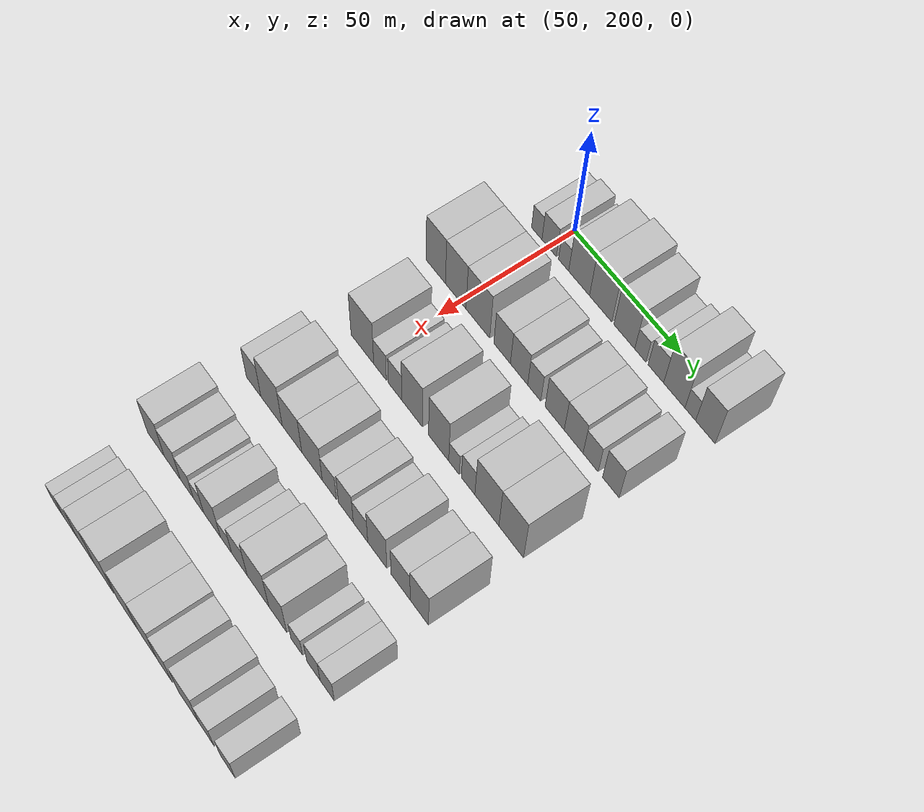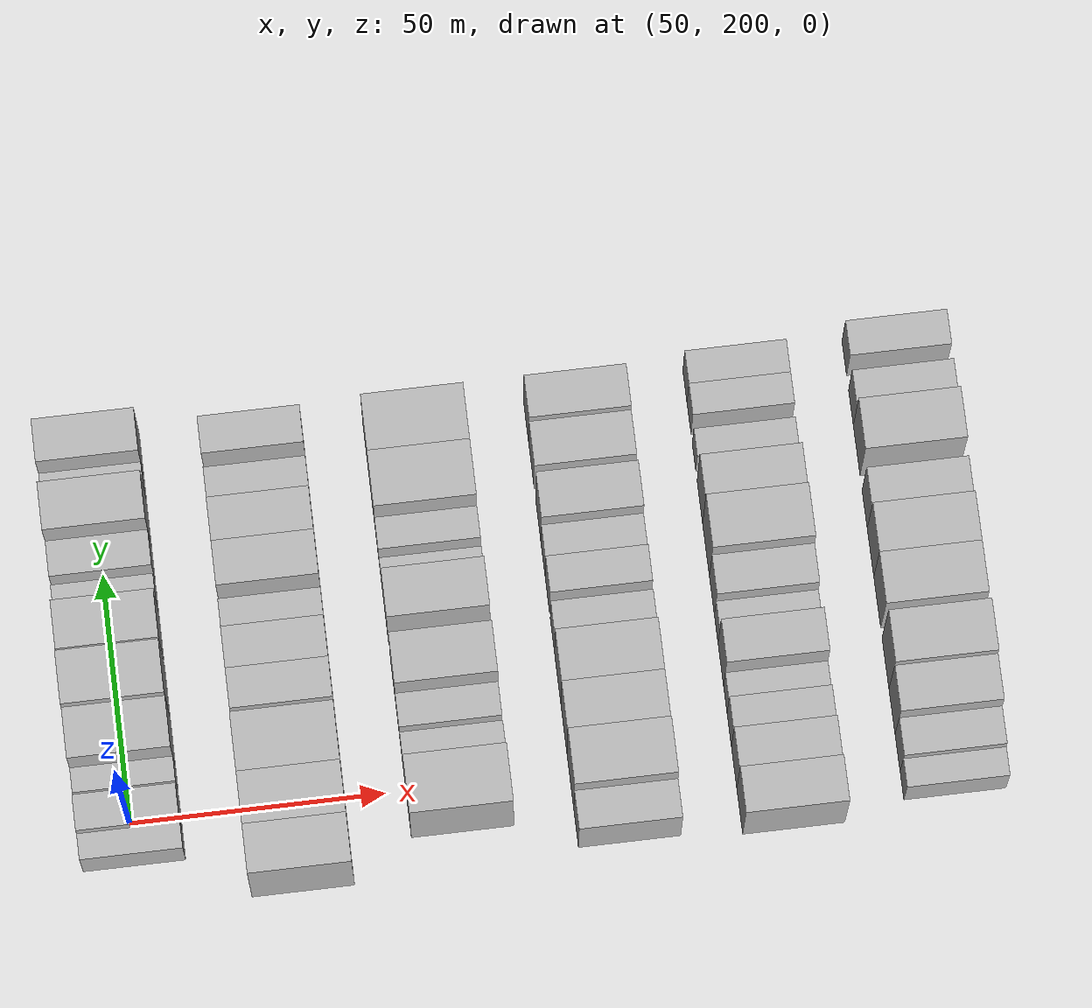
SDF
<sdf version="1.6">
 <world name="default">
  <model name="building_90">
   <static>1</static>
   <pose>50.0000 194.1657 0 0.000000 0.000000 0.000000</pose>
   <link name="link">
    <pose>0 0 6.00 0 0 0</pose>
    <collision name="collision"><geometry><box><size>20.0000 5.1552 12.0000</size></box></geometry></collision>
    <visual name="visual">
     <cast_shadows>0</cast_shadows>
     <geometry><box><size>20.0000 5.1552 12.0000</size></box></geometry>
     <material>
      <script>
       <uri>model://HANNAS_wall/materials/scripts</uri>
       <uri>model://HANNAS_wall/materials/textures</uri>
       <name>vrc/HANNAS_wall</name>
      </script>
     </material>
    </visual>
   </link>
  </model>
  <model name="building_91">
   <static>1</static>
   <pose>50.0000 200.2985 0 0.000000 0.000000 0.000000</pose>
   <link name="link">
    <pose>0 0 7.50 0 0 0</pose>
    <collision name="collision"><geometry><box><size>20.0000 7.1105 15.0000</size></box></geometry></collision>
    <visual name="visual">
     <cast_shadows>0</cast_shadows>
     <geometry><box><size>20.0000 7.1105 15.0000</size></box></geometry>
     <material>
      <script>
       <uri>model://HANNAS_wall/materials/scripts</uri>
       <uri>model://HANNAS_wall/materials/textures</uri>
       <name>vrc/HANNAS_wall</name>
      </script>
     </material>
    </visual>
   </link>
  </model>
  <model name="building_92">
   <static>1</static>
   <pose>50.0000 207.3197 0 0.000000 0.000000 0.000000</pose>
   <link name="link">
    <pose>0 0 6.00 0 0 0</pose>
    <collision name="collision"><geometry><box><size>20.0000 4.9317 12.0000</size></box></geometry></collision>
    <visual name="visual">
     <cast_shadows>0</cast_shadows>
     <geometry><box><size>20.0000 4.9317 12.0000</size></box></geometry>
     <material>
      <script>
       <uri>model://HANNAS_wall/materials/scripts</uri>
       <uri>model://HANNAS_wall/materials/textures</uri>
       <name>vrc/HANNAS_wall</name>
      </script>
     </material>
    </visual>
   </link>
  </model>
  <model name="building_93">
   <static>1</static>
   <pose>50.0000 214.8084 0 0.000000 0.000000 0.000000</pose>
   <link name="link">
    <pose>0 0 10.50 0 0 0</pose>
    <collision name="collision"><geometry><box><size>20.0000 10.0457 21.0000</size></box></geometry></collision>
    <visual name="visual">
     <cast_shadows>0</cast_shadows>
     <geometry><box><size>20.0000 10.0457 21.0000</size></box></geometry>
     <material>
      <script>
       <uri>model://HANNAS_wall/materials/scripts</uri>
       <uri>model://HANNAS_wall/materials/textures</uri>
       <name>vrc/HANNAS_wall</name>
      </script>
     </material>
    </visual>
   </link>
  </model>
  <model name="building_94">
   <static>1</static>
   <pose>50.0000 225.1279 0 0.000000 0.000000 0.000000</pose>
   <link name="link">
    <pose>0 0 12.00 0 0 0</pose>
    <collision name="collision"><geometry><box><size>20.0000 10.5933 24.0000</size></box></geometry></collision>
    <visual name="visual">
     <cast_shadows>0</cast_shadows>
     <geometry><box><size>20.0000 10.5933 24.0000</size></box></geometry>
     <material>
      <script>
       <uri>model://HANNAS_wall/materials/scripts</uri>
       <uri>model://HANNAS_wall/materials/textures</uri>
       <name>vrc/HANNAS_wall</name>
      </script>
     </material>
    </visual>
   </link>
  </model>
  <model name="building_95">
   <static>1</static>
   <pose>50.0000 236.2886 0 0.000000 0.000000 0.000000</pose>
   <link name="link">
    <pose>0 0 10.50 0 0 0</pose>
    <collision name="collision"><geometry><box><size>20.0000 9.7283 21.0000</size></box></geometry></collision>
    <visual name="visual">
     <cast_shadows>0</cast_shadows>
     <geometry><box><size>20.0000 9.7283 21.0000</size></box></geometry>
     <material>
      <script>
       <uri>model://HANNAS_wall/materials/scripts</uri>
       <uri>model://HANNAS_wall/materials/textures</uri>
       <name>vrc/HANNAS_wall</name>
      </script>
     </material>
    </visual>
   </link>
  </model>
  <model name="building_96">
   <static>1</static>
   <pose>50.0000 243.7318 0 0.000000 0.000000 0.000000</pose>
   <link name="link">
    <pose>0 0 6.00 0 0 0</pose>
    <collision name="collision"><geometry><box><size>20.0000 5.1581 12.0000</size></box></geometry></collision>
    <visual name="visual">
     <cast_shadows>0</cast_shadows>
     <geometry><box><size>20.0000 5.1581 12.0000</size></box></geometry>
     <material>
      <script>
       <uri>model://HANNAS_wall/materials/scripts</uri>
       <uri>model://HANNAS_wall/materials/textures</uri>
       <name>vrc/HANNAS_wall</name>
      </script>
     </material>
    </visual>
   </link>
  </model>
  <model name="building_97">
   <static>1</static>
   <pose>50.0000 250.8644 0 0.000000 0.000000 0.000000</pose>
   <link name="link">
    <pose>0 0 7.50 0 0 0</pose>
    <collision name="collision"><geometry><box><size>20.0000 7.1069 15.0000</size></box></geometry></collision>
    <visual name="visual">
     <cast_shadows>0</cast_shadows>
     <geometry><box><size>20.0000 7.1069 15.0000</size></box></geometry>
     <material>
      <script>
       <uri>model://HANNAS_wall/materials/scripts</uri>
       <uri>model://HANNAS_wall/materials/textures</uri>
       <name>vrc/HANNAS_wall</name>
      </script>
     </material>
    </visual>
   </link>
  </model>
  <model name="building_98">
   <static>1</static>
   <pose>50.0000 259.2221 0 0.000000 0.000000 0.000000</pose>
   <link name="link">
    <pose>0 0 12.00 0 0 0</pose>
    <collision name="collision"><geometry><box><size>20.0000 9.6086 24.0000</size></box></geometry></collision>
    <visual name="visual">
     <cast_shadows>0</cast_shadows>
     <geometry><box><size>20.0000 9.6086 24.0000</size></box></geometry>
     <material>
      <script>
       <uri>model://HANNAS_wall/materials/scripts</uri>
       <uri>model://HANNAS_wall/materials/textures</uri>
       <name>vrc/HANNAS_wall</name>
      </script>
     </material>
    </visual>
   </link>
  </model>
  <model name="building_99">
   <static>1</static>
   <pose>50.0000 266.4333 0 0.000000 0.000000 0.000000</pose>
   <link name="link">
    <pose>0 0 6.00 0 0 0</pose>
    <collision name="collision"><geometry><box><size>20.0000 4.8139 12.0000</size></box></geometry></collision>
    <visual name="visual">
     <cast_shadows>0</cast_shadows>
     <geometry><box><size>20.0000 4.8139 12.0000</size></box></geometry>
     <material>
      <script>
       <uri>model://HANNAS_wall/materials/scripts</uri>
       <uri>model://HANNAS_wall/materials/textures</uri>
       <name>vrc/HANNAS_wall</name>
      </script>
     </material>
    </visual>
   </link>
  </model>
  <model name="building_100">
   <static>1</static>
   <pose>50.0000 273.1542 0 0.000000 0.000000 0.000000</pose>
   <link name="link">
    <pose>0 0 10.50 0 0 0</pose>
    <collision name="collision"><geometry><box><size>20.0000 8.6278 21.0000</size></box></geometry></collision>
    <visual name="visual">
     <cast_shadows>0</cast_shadows>
     <geometry><box><size>20.0000 8.6278 21.0000</size></box></geometry>
     <material>
      <script>
       <uri>model://HANNAS_wall/materials/scripts</uri>
       <uri>model://HANNAS_wall/materials/textures</uri>
       <name>vrc/HANNAS_wall</name>
      </script>
     </material>
    </visual>
   </link>
  </model>
  <model name="building_216">
   <static>1</static>
   <pose>82.0000 187.6401 0 0.000000 0.000000 0.000000</pose>
   <link name="link">
    <pose>0 0 12.00 0 0 0</pose>
    <collision name="collision"><geometry><box><size>20.0000 9.7292 24.0000</size></box></geometry></collision>
    <visual name="visual">
     <cast_shadows>0</cast_shadows>
     <geometry><box><size>20.0000 9.7292 24.0000</size></box></geometry>
     <material>
      <script>
       <uri>model://HANNAS_wall/materials/scripts</uri>
       <uri>model://HANNAS_wall/materials/textures</uri>
       <name>vrc/HANNAS_wall</name>
      </script>
     </material>
    </visual>
   </link>
  </model>
  <model name="building_217">
   <static>1</static>
   <pose>82.0000 197.6625 0 0.000000 0.000000 0.000000</pose>
   <link name="link">
    <pose>0 0 12.00 0 0 0</pose>
    <collision name="collision"><geometry><box><size>20.0000 10.3156 24.0000</size></box></geometry></collision>
    <visual name="visual">
     <cast_shadows>0</cast_shadows>
     <geometry><box><size>20.0000 10.3156 24.0000</size></box></geometry>
     <material>
      <script>
       <uri>model://HANNAS_wall/materials/scripts</uri>
       <uri>model://HANNAS_wall/materials/textures</uri>
       <name>vrc/HANNAS_wall</name>
      </script>
     </material>
    </visual>
   </link>
  </model>
  <model name="building_218">
   <static>1</static>
   <pose>82.0000 208.6735 0 0.000000 0.000000 0.000000</pose>
   <link name="link">
    <pose>0 0 12.00 0 0 0</pose>
    <collision name="collision"><geometry><box><size>20.0000 11.7064 24.0000</size></box></geometry></collision>
    <visual name="visual">
     <cast_shadows>0</cast_shadows>
     <geometry><box><size>20.0000 11.7064 24.0000</size></box></geometry>
     <material>
      <script>
       <uri>model://HANNAS_wall/materials/scripts</uri>
       <uri>model://HANNAS_wall/materials/textures</uri>
       <name>vrc/HANNAS_wall</name>
      </script>
     </material>
    </visual>
   </link>
  </model>
  <model name="building_219">
   <static>1</static>
   <pose>82.0000 220.5363 0 0.000000 0.000000 0.000000</pose>
   <link name="link">
    <pose>0 0 9.00 0 0 0</pose>
    <collision name="collision"><geometry><box><size>20.0000 8.0192 18.0000</size></box></geometry></collision>
    <visual name="visual">
     <cast_shadows>0</cast_shadows>
     <geometry><box><size>20.0000 8.0192 18.0000</size></box></geometry>
     <material>
      <script>
       <uri>model://HANNAS_wall/materials/scripts</uri>
       <uri>model://HANNAS_wall/materials/textures</uri>
       <name>vrc/HANNAS_wall</name>
      </script>
     </material>
    </visual>
   </link>
  </model>
  <model name="building_220">
   <static>1</static>
   <pose>82.0000 228.6786 0 0.000000 0.000000 0.000000</pose>
   <link name="link">
    <pose>0 0 9.00 0 0 0</pose>
    <collision name="collision"><geometry><box><size>20.0000 8.2654 18.0000</size></box></geometry></collision>
    <visual name="visual">
     <cast_shadows>0</cast_shadows>
     <geometry><box><size>20.0000 8.2654 18.0000</size></box></geometry>
     <material>
      <script>
       <uri>model://HANNAS_wall/materials/scripts</uri>
       <uri>model://HANNAS_wall/materials/textures</uri>
       <name>vrc/HANNAS_wall</name>
      </script>
     </material>
    </visual>
   </link>
  </model>
  <model name="building_221">
   <static>1</static>
   <pose>82.0000 235.9251 0 0.000000 0.000000 0.000000</pose>
   <link name="link">
    <pose>0 0 7.50 0 0 0</pose>
    <collision name="collision"><geometry><box><size>20.0000 6.2278 15.0000</size></box></geometry></collision>
    <visual name="visual">
     <cast_shadows>0</cast_shadows>
     <geometry><box><size>20.0000 6.2278 15.0000</size></box></geometry>
     <material>
      <script>
       <uri>model://HANNAS_wall/materials/scripts</uri>
       <uri>model://HANNAS_wall/materials/textures</uri>
       <name>vrc/HANNAS_wall</name>
      </script>
     </material>
    </visual>
   </link>
  </model>
  <model name="building_222">
   <static>1</static>
   <pose>82.0000 245.5191 0 0.000000 0.000000 0.000000</pose>
   <link name="link">
    <pose>0 0 9.00 0 0 0</pose>
    <collision name="collision"><geometry><box><size>20.0000 8.9601 18.0000</size></box></geometry></collision>
    <visual name="visual">
     <cast_shadows>0</cast_shadows>
     <geometry><box><size>20.0000 8.9601 18.0000</size></box></geometry>
     <material>
      <script>
       <uri>model://HANNAS_wall/materials/scripts</uri>
       <uri>model://HANNAS_wall/materials/textures</uri>
       <name>vrc/HANNAS_wall</name>
      </script>
     </material>
    </visual>
   </link>
  </model>
  <model name="building_223">
   <static>1</static>
   <pose>82.0000 254.3546 0 0.000000 0.000000 0.000000</pose>
   <link name="link">
    <pose>0 0 9.00 0 0 0</pose>
    <collision name="collision"><geometry><box><size>20.0000 8.7109 18.0000</size></box></geometry></collision>
    <visual name="visual">
     <cast_shadows>0</cast_shadows>
     <geometry><box><size>20.0000 8.7109 18.0000</size></box></geometry>
     <material>
      <script>
       <uri>model://HANNAS_wall/materials/scripts</uri>
       <uri>model://HANNAS_wall/materials/textures</uri>
       <name>vrc/HANNAS_wall</name>
      </script>
     </material>
    </visual>
   </link>
  </model>
  <model name="building_224">
   <static>1</static>
   <pose>82.0000 262.1255 0 0.000000 0.000000 0.000000</pose>
   <link name="link">
    <pose>0 0 7.50 0 0 0</pose>
    <collision name="collision"><geometry><box><size>20.0000 6.8310 15.0000</size></box></geometry></collision>
    <visual name="visual">
     <cast_shadows>0</cast_shadows>
     <geometry><box><size>20.0000 6.8310 15.0000</size></box></geometry>
     <material>
      <script>
       <uri>model://HANNAS_wall/materials/scripts</uri>
       <uri>model://HANNAS_wall/materials/textures</uri>
       <name>vrc/HANNAS_wall</name>
      </script>
     </material>
    </visual>
   </link>
  </model>
  <model name="building_225">
   <static>1</static>
   <pose>82.0000 271.2962 0 0.000000 0.000000 0.000000</pose>
   <link name="link">
    <pose>0 0 9.00 0 0 0</pose>
    <collision name="collision"><geometry><box><size>20.0000 7.5104 18.0000</size></box></geometry></collision>
    <visual name="visual">
     <cast_shadows>0</cast_shadows>
     <geometry><box><size>20.0000 7.5104 18.0000</size></box></geometry>
     <material>
      <script>
       <uri>model://HANNAS_wall/materials/scripts</uri>
       <uri>model://HANNAS_wall/materials/textures</uri>
       <name>vrc/HANNAS_wall</name>
      </script>
     </material>
    </visual>
   </link>
  </model>
  <model name="building_343">
   <static>1</static>
   <pose>114.0000 196.5403 0 0.000000 0.000000 0.000000</pose>
   <link name="link">
    <pose>0 0 12.00 0 0 0</pose>
    <collision name="collision"><geometry><box><size>20.0000 11.5125 24.0000</size></box></geometry></collision>
    <visual name="visual">
     <cast_shadows>0</cast_shadows>
     <geometry><box><size>20.0000 11.5125 24.0000</size></box></geometry>
     <material>
      <script>
       <uri>model://HANNAS_wall/materials/scripts</uri>
       <uri>model://HANNAS_wall/materials/textures</uri>
       <name>vrc/HANNAS_wall</name>
      </script>
     </material>
    </visual>
   </link>
  </model>
  <model name="building_344">
   <static>1</static>
   <pose>114.0000 205.4715 0 0.000000 0.000000 0.000000</pose>
   <link name="link">
    <pose>0 0 7.50 0 0 0</pose>
    <collision name="collision"><geometry><box><size>20.0000 6.3498 15.0000</size></box></geometry></collision>
    <visual name="visual">
     <cast_shadows>0</cast_shadows>
     <geometry><box><size>20.0000 6.3498 15.0000</size></box></geometry>
     <material>
      <script>
       <uri>model://HANNAS_wall/materials/scripts</uri>
       <uri>model://HANNAS_wall/materials/textures</uri>
       <name>vrc/HANNAS_wall</name>
      </script>
     </material>
    </visual>
   </link>
  </model>
  <model name="building_345">
   <static>1</static>
   <pose>114.0000 212.9969 0 0.000000 0.000000 0.000000</pose>
   <link name="link">
    <pose>0 0 7.50 0 0 0</pose>
    <collision name="collision"><geometry><box><size>20.0000 6.7010 15.0000</size></box></geometry></collision>
    <visual name="visual">
     <cast_shadows>0</cast_shadows>
     <geometry><box><size>20.0000 6.7010 15.0000</size></box></geometry>
     <material>
      <script>
       <uri>model://HANNAS_wall/materials/scripts</uri>
       <uri>model://HANNAS_wall/materials/textures</uri>
       <name>vrc/HANNAS_wall</name>
      </script>
     </material>
    </visual>
   </link>
  </model>
  <model name="building_346">
   <static>1</static>
   <pose>114.0000 221.4097 0 0.000000 0.000000 0.000000</pose>
   <link name="link">
    <pose>0 0 12.00 0 0 0</pose>
    <collision name="collision"><geometry><box><size>20.0000 10.1246 24.0000</size></box></geometry></collision>
    <visual name="visual">
     <cast_shadows>0</cast_shadows>
     <geometry><box><size>20.0000 10.1246 24.0000</size></box></geometry>
     <material>
      <script>
       <uri>model://HANNAS_wall/materials/scripts</uri>
       <uri>model://HANNAS_wall/materials/textures</uri>
       <name>vrc/HANNAS_wall</name>
      </script>
     </material>
    </visual>
   </link>
  </model>
  <model name="building_347">
   <static>1</static>
   <pose>114.0000 234.3363 0 0.000000 0.000000 0.000000</pose>
   <link name="link">
    <pose>0 0 12.00 0 0 0</pose>
    <collision name="collision"><geometry><box><size>20.0000 9.7286 24.0000</size></box></geometry></collision>
    <visual name="visual">
     <cast_shadows>0</cast_shadows>
     <geometry><box><size>20.0000 9.7286 24.0000</size></box></geometry>
     <material>
      <script>
       <uri>model://HANNAS_wall/materials/scripts</uri>
       <uri>model://HANNAS_wall/materials/textures</uri>
       <name>vrc/HANNAS_wall</name>
      </script>
     </material>
    </visual>
   </link>
  </model>
  <model name="building_348">
   <static>1</static>
   <pose>114.0000 241.6982 0 0.000000 0.000000 0.000000</pose>
   <link name="link">
    <pose>0 0 6.00 0 0 0</pose>
    <collision name="collision"><geometry><box><size>20.0000 4.9952 12.0000</size></box></geometry></collision>
    <visual name="visual">
     <cast_shadows>0</cast_shadows>
     <geometry><box><size>20.0000 4.9952 12.0000</size></box></geometry>
     <material>
      <script>
       <uri>model://HANNAS_wall/materials/scripts</uri>
       <uri>model://HANNAS_wall/materials/textures</uri>
       <name>vrc/HANNAS_wall</name>
      </script>
     </material>
    </visual>
   </link>
  </model>
  <model name="building_349">
   <static>1</static>
   <pose>114.0000 248.3928 0 0.000000 0.000000 0.000000</pose>
   <link name="link">
    <pose>0 0 7.50 0 0 0</pose>
    <collision name="collision"><geometry><box><size>20.0000 6.3942 15.0000</size></box></geometry></collision>
    <visual name="visual">
     <cast_shadows>0</cast_shadows>
     <geometry><box><size>20.0000 6.3942 15.0000</size></box></geometry>
     <material>
      <script>
       <uri>model://HANNAS_wall/materials/scripts</uri>
       <uri>model://HANNAS_wall/materials/textures</uri>
       <name>vrc/HANNAS_wall</name>
      </script>
     </material>
    </visual>
   </link>
  </model>
  <model name="building_350">
   <static>1</static>
   <pose>114.0000 257.1950 0 0.000000 0.000000 0.000000</pose>
   <link name="link">
    <pose>0 0 12.00 0 0 0</pose>
    <collision name="collision"><geometry><box><size>20.0000 11.2101 24.0000</size></box></geometry></collision>
    <visual name="visual">
     <cast_shadows>0</cast_shadows>
     <geometry><box><size>20.0000 11.2101 24.0000</size></box></geometry>
     <material>
      <script>
       <uri>model://HANNAS_wall/materials/scripts</uri>
       <uri>model://HANNAS_wall/materials/textures</uri>
       <name>vrc/HANNAS_wall</name>
      </script>
     </material>
    </visual>
   </link>
  </model>
  <model name="building_351">
   <static>1</static>
   <pose>114.0000 268.4526 0 0.000000 0.000000 0.000000</pose>
   <link name="link">
    <pose>0 0 12.00 0 0 0</pose>
    <collision name="collision"><geometry><box><size>20.0000 11.3052 24.0000</size></box></geometry></collision>
    <visual name="visual">
     <cast_shadows>0</cast_shadows>
     <geometry><box><size>20.0000 11.3052 24.0000</size></box></geometry>
     <material>
      <script>
       <uri>model://HANNAS_wall/materials/scripts</uri>
       <uri>model://HANNAS_wall/materials/textures</uri>
       <name>vrc/HANNAS_wall</name>
      </script>
     </material>
    </visual>
   </link>
  </model>
  <model name="building_454">
   <static>1</static>
   <pose>146.0000 188.8323 0 0.000000 0.000000 0.000000</pose>
   <link name="link">
    <pose>0 0 9.00 0 0 0</pose>
    <collision name="collision"><geometry><box><size>20.0000 7.6189 18.0000</size></box></geometry></collision>
    <visual name="visual">
     <cast_shadows>0</cast_shadows>
     <geometry><box><size>20.0000 7.6189 18.0000</size></box></geometry>
     <material>
      <script>
       <uri>model://HANNAS_wall/materials/scripts</uri>
       <uri>model://HANNAS_wall/materials/textures</uri>
       <name>vrc/HANNAS_wall</name>
      </script>
     </material>
    </visual>
   </link>
  </model>
  <model name="building_455">
   <static>1</static>
   <pose>146.0000 198.1766 0 0.000000 0.000000 0.000000</pose>
   <link name="link">
    <pose>0 0 12.00 0 0 0</pose>
    <collision name="collision"><geometry><box><size>20.0000 11.0697 24.0000</size></box></geometry></collision>
    <visual name="visual">
     <cast_shadows>0</cast_shadows>
     <geometry><box><size>20.0000 11.0697 24.0000</size></box></geometry>
     <material>
      <script>
       <uri>model://HANNAS_wall/materials/scripts</uri>
       <uri>model://HANNAS_wall/materials/textures</uri>
       <name>vrc/HANNAS_wall</name>
      </script>
     </material>
    </visual>
   </link>
  </model>
  <model name="building_456">
   <static>1</static>
   <pose>146.0000 208.7052 0 0.000000 0.000000 0.000000</pose>
   <link name="link">
    <pose>0 0 10.50 0 0 0</pose>
    <collision name="collision"><geometry><box><size>20.0000 9.9875 21.0000</size></box></geometry></collision>
    <visual name="visual">
     <cast_shadows>0</cast_shadows>
     <geometry><box><size>20.0000 9.9875 21.0000</size></box></geometry>
     <material>
      <script>
       <uri>model://HANNAS_wall/materials/scripts</uri>
       <uri>model://HANNAS_wall/materials/textures</uri>
       <name>vrc/HANNAS_wall</name>
      </script>
     </material>
    </visual>
   </link>
  </model>
  <model name="building_457">
   <static>1</static>
   <pose>146.0000 218.8405 0 0.000000 0.000000 0.000000</pose>
   <link name="link">
    <pose>0 0 10.50 0 0 0</pose>
    <collision name="collision"><geometry><box><size>20.0000 10.2830 21.0000</size></box></geometry></collision>
    <visual name="visual">
     <cast_shadows>0</cast_shadows>
     <geometry><box><size>20.0000 10.2830 21.0000</size></box></geometry>
     <material>
      <script>
       <uri>model://HANNAS_wall/materials/scripts</uri>
       <uri>model://HANNAS_wall/materials/textures</uri>
       <name>vrc/HANNAS_wall</name>
      </script>
     </material>
    </visual>
   </link>
  </model>
  <model name="building_458">
   <static>1</static>
   <pose>146.0000 227.4841 0 0.000000 0.000000 0.000000</pose>
   <link name="link">
    <pose>0 0 7.50 0 0 0</pose>
    <collision name="collision"><geometry><box><size>20.0000 7.0042 15.0000</size></box></geometry></collision>
    <visual name="visual">
     <cast_shadows>0</cast_shadows>
     <geometry><box><size>20.0000 7.0042 15.0000</size></box></geometry>
     <material>
      <script>
       <uri>model://HANNAS_wall/materials/scripts</uri>
       <uri>model://HANNAS_wall/materials/textures</uri>
       <name>vrc/HANNAS_wall</name>
      </script>
     </material>
    </visual>
   </link>
  </model>
  <model name="building_459">
   <static>1</static>
   <pose>146.0000 235.6304 0 0.000000 0.000000 0.000000</pose>
   <link name="link">
    <pose>0 0 9.00 0 0 0</pose>
    <collision name="collision"><geometry><box><size>20.0000 7.2883 18.0000</size></box></geometry></collision>
    <visual name="visual">
     <cast_shadows>0</cast_shadows>
     <geometry><box><size>20.0000 7.2883 18.0000</size></box></geometry>
     <material>
      <script>
       <uri>model://HANNAS_wall/materials/scripts</uri>
       <uri>model://HANNAS_wall/materials/textures</uri>
       <name>vrc/HANNAS_wall</name>
      </script>
     </material>
    </visual>
   </link>
  </model>
  <model name="building_460">
   <static>1</static>
   <pose>146.0000 242.7772 0 0.000000 0.000000 0.000000</pose>
   <link name="link">
    <pose>0 0 7.50 0 0 0</pose>
    <collision name="collision"><geometry><box><size>20.0000 7.0054 15.0000</size></box></geometry></collision>
    <visual name="visual">
     <cast_shadows>0</cast_shadows>
     <geometry><box><size>20.0000 7.0054 15.0000</size></box></geometry>
     <material>
      <script>
       <uri>model://HANNAS_wall/materials/scripts</uri>
       <uri>model://HANNAS_wall/materials/textures</uri>
       <name>vrc/HANNAS_wall</name>
      </script>
     </material>
    </visual>
   </link>
  </model>
  <model name="building_461">
   <static>1</static>
   <pose>146.0000 250.8493 0 0.000000 0.000000 0.000000</pose>
   <link name="link">
    <pose>0 0 10.50 0 0 0</pose>
    <collision name="collision"><geometry><box><size>20.0000 9.1389 21.0000</size></box></geometry></collision>
    <visual name="visual">
     <cast_shadows>0</cast_shadows>
     <geometry><box><size>20.0000 9.1389 21.0000</size></box></geometry>
     <material>
      <script>
       <uri>model://HANNAS_wall/materials/scripts</uri>
       <uri>model://HANNAS_wall/materials/textures</uri>
       <name>vrc/HANNAS_wall</name>
      </script>
     </material>
    </visual>
   </link>
  </model>
  <model name="building_462">
   <static>1</static>
   <pose>146.0000 261.9082 0 0.000000 0.000000 0.000000</pose>
   <link name="link">
    <pose>0 0 9.00 0 0 0</pose>
    <collision name="collision"><geometry><box><size>20.0000 8.9789 18.0000</size></box></geometry></collision>
    <visual name="visual">
     <cast_shadows>0</cast_shadows>
     <geometry><box><size>20.0000 8.9789 18.0000</size></box></geometry>
     <material>
      <script>
       <uri>model://HANNAS_wall/materials/scripts</uri>
       <uri>model://HANNAS_wall/materials/textures</uri>
       <name>vrc/HANNAS_wall</name>
      </script>
     </material>
    </visual>
   </link>
  </model>
  <model name="building_463">
   <static>1</static>
   <pose>146.0000 270.6657 0 0.000000 0.000000 0.000000</pose>
   <link name="link">
    <pose>0 0 10.50 0 0 0</pose>
    <collision name="collision"><geometry><box><size>20.0000 8.5362 21.0000</size></box></geometry></collision>
    <visual name="visual">
     <cast_shadows>0</cast_shadows>
     <geometry><box><size>20.0000 8.5362 21.0000</size></box></geometry>
     <material>
      <script>
       <uri>model://HANNAS_wall/materials/scripts</uri>
       <uri>model://HANNAS_wall/materials/textures</uri>
       <name>vrc/HANNAS_wall</name>
      </script>
     </material>
    </visual>
   </link>
  </model>
  <model name="building_580">
   <static>1</static>
   <pose>178.0000 188.4040 0 0.000000 0.000000 0.000000</pose>
   <link name="link">
    <pose>0 0 10.50 0 0 0</pose>
    <collision name="collision"><geometry><box><size>20.0000 9.0870 21.0000</size></box></geometry></collision>
    <visual name="visual">
     <cast_shadows>0</cast_shadows>
     <geometry><box><size>20.0000 9.0870 21.0000</size></box></geometry>
     <material>
      <script>
       <uri>model://HANNAS_wall/materials/scripts</uri>
       <uri>model://HANNAS_wall/materials/textures</uri>
       <name>vrc/HANNAS_wall</name>
      </script>
     </material>
    </visual>
   </link>
  </model>
  <model name="building_581">
   <static>1</static>
   <pose>178.0000 197.1548 0 0.000000 0.000000 0.000000</pose>
   <link name="link">
    <pose>0 0 9.00 0 0 0</pose>
    <collision name="collision"><geometry><box><size>20.0000 8.4147 18.0000</size></box></geometry></collision>
    <visual name="visual">
     <cast_shadows>0</cast_shadows>
     <geometry><box><size>20.0000 8.4147 18.0000</size></box></geometry>
     <material>
      <script>
       <uri>model://HANNAS_wall/materials/scripts</uri>
       <uri>model://HANNAS_wall/materials/textures</uri>
       <name>vrc/HANNAS_wall</name>
      </script>
     </material>
    </visual>
   </link>
  </model>
  <model name="building_582">
   <static>1</static>
   <pose>178.0000 204.7232 0 0.000000 0.000000 0.000000</pose>
   <link name="link">
    <pose>0 0 7.50 0 0 0</pose>
    <collision name="collision"><geometry><box><size>20.0000 6.7220 15.0000</size></box></geometry></collision>
    <visual name="visual">
     <cast_shadows>0</cast_shadows>
     <geometry><box><size>20.0000 6.7220 15.0000</size></box></geometry>
     <material>
      <script>
       <uri>model://HANNAS_wall/materials/scripts</uri>
       <uri>model://HANNAS_wall/materials/textures</uri>
       <name>vrc/HANNAS_wall</name>
      </script>
     </material>
    </visual>
   </link>
  </model>
  <model name="building_583">
   <static>1</static>
   <pose>178.0000 210.8169 0 0.000000 0.000000 0.000000</pose>
   <link name="link">
    <pose>0 0 6.00 0 0 0</pose>
    <collision name="collision"><geometry><box><size>20.0000 5.4655 12.0000</size></box></geometry></collision>
    <visual name="visual">
     <cast_shadows>0</cast_shadows>
     <geometry><box><size>20.0000 5.4655 12.0000</size></box></geometry>
     <material>
      <script>
       <uri>model://HANNAS_wall/materials/scripts</uri>
       <uri>model://HANNAS_wall/materials/textures</uri>
       <name>vrc/HANNAS_wall</name>
      </script>
     </material>
    </visual>
   </link>
  </model>
  <model name="building_584">
   <static>1</static>
   <pose>178.0000 217.8485 0 0.000000 0.000000 0.000000</pose>
   <link name="link">
    <pose>0 0 10.50 0 0 0</pose>
    <collision name="collision"><geometry><box><size>20.0000 8.5977 21.0000</size></box></geometry></collision>
    <visual name="visual">
     <cast_shadows>0</cast_shadows>
     <geometry><box><size>20.0000 8.5977 21.0000</size></box></geometry>
     <material>
      <script>
       <uri>model://HANNAS_wall/materials/scripts</uri>
       <uri>model://HANNAS_wall/materials/textures</uri>
       <name>vrc/HANNAS_wall</name>
      </script>
     </material>
    </visual>
   </link>
  </model>
  <model name="building_585">
   <static>1</static>
   <pose>178.0000 224.9964 0 0.000000 0.000000 0.000000</pose>
   <link name="link">
    <pose>0 0 6.00 0 0 0</pose>
    <collision name="collision"><geometry><box><size>20.0000 5.6981 12.0000</size></box></geometry></collision>
    <visual name="visual">
     <cast_shadows>0</cast_shadows>
     <geometry><box><size>20.0000 5.6981 12.0000</size></box></geometry>
     <material>
      <script>
       <uri>model://HANNAS_wall/materials/scripts</uri>
       <uri>model://HANNAS_wall/materials/textures</uri>
       <name>vrc/HANNAS_wall</name>
      </script>
     </material>
    </visual>
   </link>
  </model>
  <model name="building_586">
   <static>1</static>
   <pose>178.0000 231.7770 0 0.000000 0.000000 0.000000</pose>
   <link name="link">
    <pose>0 0 9.00 0 0 0</pose>
    <collision name="collision"><geometry><box><size>20.0000 7.8631 18.0000</size></box></geometry></collision>
    <visual name="visual">
     <cast_shadows>0</cast_shadows>
     <geometry><box><size>20.0000 7.8631 18.0000</size></box></geometry>
     <material>
      <script>
       <uri>model://HANNAS_wall/materials/scripts</uri>
       <uri>model://HANNAS_wall/materials/textures</uri>
       <name>vrc/HANNAS_wall</name>
      </script>
     </material>
    </visual>
   </link>
  </model>
  <model name="building_587">
   <static>1</static>
   <pose>178.0000 241.0369 0 0.000000 0.000000 0.000000</pose>
   <link name="link">
    <pose>0 0 12.00 0 0 0</pose>
    <collision name="collision"><geometry><box><size>20.0000 10.6567 24.0000</size></box></geometry></collision>
    <visual name="visual">
     <cast_shadows>0</cast_shadows>
     <geometry><box><size>20.0000 10.6567 24.0000</size></box></geometry>
     <material>
      <script>
       <uri>model://HANNAS_wall/materials/scripts</uri>
       <uri>model://HANNAS_wall/materials/textures</uri>
       <name>vrc/HANNAS_wall</name>
      </script>
     </material>
    </visual>
   </link>
  </model>
  <model name="building_588">
   <static>1</static>
   <pose>178.0000 250.7527 0 0.000000 0.000000 0.000000</pose>
   <link name="link">
    <pose>0 0 10.50 0 0 0</pose>
    <collision name="collision"><geometry><box><size>20.0000 8.7750 21.0000</size></box></geometry></collision>
    <visual name="visual">
     <cast_shadows>0</cast_shadows>
     <geometry><box><size>20.0000 8.7750 21.0000</size></box></geometry>
     <material>
      <script>
       <uri>model://HANNAS_wall/materials/scripts</uri>
       <uri>model://HANNAS_wall/materials/textures</uri>
       <name>vrc/HANNAS_wall</name>
      </script>
     </material>
    </visual>
   </link>
  </model>
  <model name="building_589">
   <static>1</static>
   <pose>178.0000 259.9557 0 0.000000 0.000000 0.000000</pose>
   <link name="link">
    <pose>0 0 6.00 0 0 0</pose>
    <collision name="collision"><geometry><box><size>20.0000 5.6312 12.0000</size></box></geometry></collision>
    <visual name="visual">
     <cast_shadows>0</cast_shadows>
     <geometry><box><size>20.0000 5.6312 12.0000</size></box></geometry>
     <material>
      <script>
       <uri>model://HANNAS_wall/materials/scripts</uri>
       <uri>model://HANNAS_wall/materials/textures</uri>
       <name>vrc/HANNAS_wall</name>
      </script>
     </material>
    </visual>
   </link>
  </model>
  <model name="building_590">
   <static>1</static>
   <pose>178.0000 267.9493 0 0.000000 0.000000 0.000000</pose>
   <link name="link">
    <pose>0 0 7.50 0 0 0</pose>
    <collision name="collision"><geometry><box><size>20.0000 6.3559 15.0000</size></box></geometry></collision>
    <visual name="visual">
     <cast_shadows>0</cast_shadows>
     <geometry><box><size>20.0000 6.3559 15.0000</size></box></geometry>
     <material>
      <script>
       <uri>model://HANNAS_wall/materials/scripts</uri>
       <uri>model://HANNAS_wall/materials/textures</uri>
       <name>vrc/HANNAS_wall</name>
      </script>
     </material>
    </visual>
   </link>
  </model>
  <model name="building_591">
   <static>1</static>
   <pose>178.0000 274.4522 0 0.000000 0.000000 0.000000</pose>
   <link name="link">
    <pose>0 0 7.50 0 0 0</pose>
    <collision name="collision"><geometry><box><size>20.0000 6.6498 15.0000</size></box></geometry></collision>
    <visual name="visual">
     <cast_shadows>0</cast_shadows>
     <geometry><box><size>20.0000 6.6498 15.0000</size></box></geometry>
     <material>
      <script>
       <uri>model://HANNAS_wall/materials/scripts</uri>
       <uri>model://HANNAS_wall/materials/textures</uri>
       <name>vrc/HANNAS_wall</name>
      </script>
     </material>
    </visual>
   </link>
  </model>
  <model name="building_704">
   <static>1</static>
   <pose>210.0000 189.7635 0 0.000000 0.000000 0.000000</pose>
   <link name="link">
    <pose>0 0 6.00 0 0 0</pose>
    <collision name="collision"><geometry><box><size>20.0000 5.6793 12.0000</size></box></geometry></collision>
    <visual name="visual">
     <cast_shadows>0</cast_shadows>
     <geometry><box><size>20.0000 5.6793 12.0000</size></box></geometry>
     <material>
      <script>
       <uri>model://HANNAS_wall/materials/scripts</uri>
       <uri>model://HANNAS_wall/materials/textures</uri>
       <name>vrc/HANNAS_wall</name>
      </script>
     </material>
    </visual>
   </link>
  </model>
  <model name="building_705">
   <static>1</static>
   <pose>210.0000 196.3363 0 0.000000 0.000000 0.000000</pose>
   <link name="link">
    <pose>0 0 7.50 0 0 0</pose>
    <collision name="collision"><geometry><box><size>20.0000 7.4663 15.0000</size></box></geometry></collision>
    <visual name="visual">
     <cast_shadows>0</cast_shadows>
     <geometry><box><size>20.0000 7.4663 15.0000</size></box></geometry>
     <material>
      <script>
       <uri>model://HANNAS_wall/materials/scripts</uri>
       <uri>model://HANNAS_wall/materials/textures</uri>
       <name>vrc/HANNAS_wall</name>
      </script>
     </material>
    </visual>
   </link>
  </model>
  <model name="building_706">
   <static>1</static>
   <pose>210.0000 204.6052 0 0.000000 0.000000 0.000000</pose>
   <link name="link">
    <pose>0 0 10.50 0 0 0</pose>
    <collision name="collision"><geometry><box><size>20.0000 9.0716 21.0000</size></box></geometry></collision>
    <visual name="visual">
     <cast_shadows>0</cast_shadows>
     <geometry><box><size>20.0000 9.0716 21.0000</size></box></geometry>
     <material>
      <script>
       <uri>model://HANNAS_wall/materials/scripts</uri>
       <uri>model://HANNAS_wall/materials/textures</uri>
       <name>vrc/HANNAS_wall</name>
      </script>
     </material>
    </visual>
   </link>
  </model>
  <model name="building_707">
   <static>1</static>
   <pose>210.0000 214.3152 0 0.000000 0.000000 0.000000</pose>
   <link name="link">
    <pose>0 0 12.00 0 0 0</pose>
    <collision name="collision"><geometry><box><size>20.0000 10.3483 24.0000</size></box></geometry></collision>
    <visual name="visual">
     <cast_shadows>0</cast_shadows>
     <geometry><box><size>20.0000 10.3483 24.0000</size></box></geometry>
     <material>
      <script>
       <uri>model://HANNAS_wall/materials/scripts</uri>
       <uri>model://HANNAS_wall/materials/textures</uri>
       <name>vrc/HANNAS_wall</name>
      </script>
     </material>
    </visual>
   </link>
  </model>
  <model name="building_708">
   <static>1</static>
   <pose>210.0000 226.6443 0 0.000000 0.000000 0.000000</pose>
   <link name="link">
    <pose>0 0 10.50 0 0 0</pose>
    <collision name="collision"><geometry><box><size>20.0000 10.3098 21.0000</size></box></geometry></collision>
    <visual name="visual">
     <cast_shadows>0</cast_shadows>
     <geometry><box><size>20.0000 10.3098 21.0000</size></box></geometry>
     <material>
      <script>
       <uri>model://HANNAS_wall/materials/scripts</uri>
       <uri>model://HANNAS_wall/materials/textures</uri>
       <name>vrc/HANNAS_wall</name>
      </script>
     </material>
    </visual>
   </link>
  </model>
  <model name="building_709">
   <static>1</static>
   <pose>210.0000 236.7233 0 0.000000 0.000000 0.000000</pose>
   <link name="link">
    <pose>0 0 10.50 0 0 0</pose>
    <collision name="collision"><geometry><box><size>20.0000 9.8481 21.0000</size></box></geometry></collision>
    <visual name="visual">
     <cast_shadows>0</cast_shadows>
     <geometry><box><size>20.0000 9.8481 21.0000</size></box></geometry>
     <material>
      <script>
       <uri>model://HANNAS_wall/materials/scripts</uri>
       <uri>model://HANNAS_wall/materials/textures</uri>
       <name>vrc/HANNAS_wall</name>
      </script>
     </material>
    </visual>
   </link>
  </model>
  <model name="building_710">
   <static>1</static>
   <pose>210.0000 245.5710 0 0.000000 0.000000 0.000000</pose>
   <link name="link">
    <pose>0 0 9.00 0 0 0</pose>
    <collision name="collision"><geometry><box><size>20.0000 7.8474 18.0000</size></box></geometry></collision>
    <visual name="visual">
     <cast_shadows>0</cast_shadows>
     <geometry><box><size>20.0000 7.8474 18.0000</size></box></geometry>
     <material>
      <script>
       <uri>model://HANNAS_wall/materials/scripts</uri>
       <uri>model://HANNAS_wall/materials/textures</uri>
       <name>vrc/HANNAS_wall</name>
      </script>
     </material>
    </visual>
   </link>
  </model>
  <model name="building_711">
   <static>1</static>
   <pose>210.0000 257.5992 0 0.000000 0.000000 0.000000</pose>
   <link name="link">
    <pose>0 0 10.50 0 0 0</pose>
    <collision name="collision"><geometry><box><size>20.0000 10.2088 21.0000</size></box></geometry></collision>
    <visual name="visual">
     <cast_shadows>0</cast_shadows>
     <geometry><box><size>20.0000 10.2088 21.0000</size></box></geometry>
     <material>
      <script>
       <uri>model://HANNAS_wall/materials/scripts</uri>
       <uri>model://HANNAS_wall/materials/textures</uri>
       <name>vrc/HANNAS_wall</name>
      </script>
     </material>
    </visual>
   </link>
  </model>
  <model name="building_712">
   <static>1</static>
   <pose>210.0000 266.3751 0 0.000000 0.000000 0.000000</pose>
   <link name="link">
    <pose>0 0 7.50 0 0 0</pose>
    <collision name="collision"><geometry><box><size>20.0000 7.3431 15.0000</size></box></geometry></collision>
    <visual name="visual">
     <cast_shadows>0</cast_shadows>
     <geometry><box><size>20.0000 7.3431 15.0000</size></box></geometry>
     <material>
      <script>
       <uri>model://HANNAS_wall/materials/scripts</uri>
       <uri>model://HANNAS_wall/materials/textures</uri>
       <name>vrc/HANNAS_wall</name>
      </script>
     </material>
    </visual>
   </link>
  </model>
  <model name="building_713">
   <static>1</static>
   <pose>210.0000 276.5856 0 0.000000 0.000000 0.000000</pose>
   <link name="link">
    <pose>0 0 7.50 0 0 0</pose>
    <collision name="collision"><geometry><box><size>20.0000 7.0778 15.0000</size></box></geometry></collision>
    <visual name="visual">
     <cast_shadows>0</cast_shadows>
     <geometry><box><size>20.0000 7.0778 15.0000</size></box></geometry>
     <material>
      <script>
       <uri>model://HANNAS_wall/materials/scripts</uri>
       <uri>model://HANNAS_wall/materials/textures</uri>
       <name>vrc/HANNAS_wall</name>
      </script>
     </material>
    </visual>
   </link>
  </model>
 </world>
</sdf>
